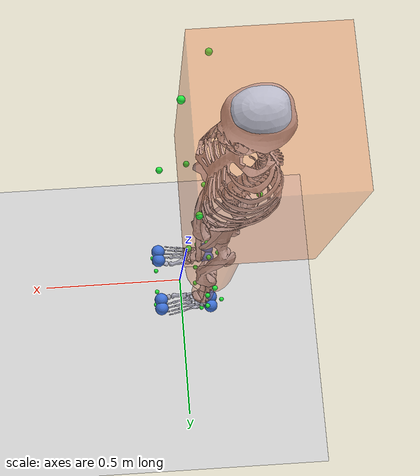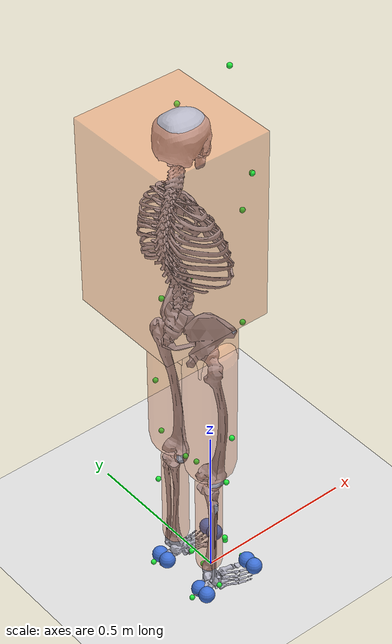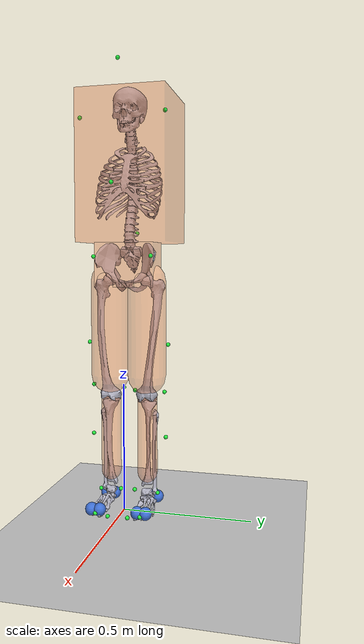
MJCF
<mujoco model="S001_base">
  <compiler angle="radian" autolimits="true" />
  <option gravity="0 0 -9.80665" timestep="0.001" />
  <default>
    <default class="visual">
      <geom contype="0" conaffinity="0" group="2" rgba="0.72 0.72 0.78 1" />
    </default>
    <default class="collision">
      <geom friction="0.8 0.005 0.0001" solref="-100000 -1000" rgba="0.25 0.45 0.85 1" />
    </default>
    <default class="self_collision">
      <geom friction="0.8 0.005 0.0001" solref="-25000 -250" rgba="0.95 0.45 0.18 0.35" />
    </default>
  </default>
  <asset>
    <mesh name="visual_00_pelvis_sacrum_ec82986d" file="Geometry/visual_00_pelvis_sacrum_ec82986d.obj" />
    <mesh name="visual_01_pelvis_pelvis_302c8103" file="Geometry/visual_01_pelvis_pelvis_302c8103.obj" />
    <mesh name="visual_02_pelvis_l_pelvis_221ff377" file="Geometry/visual_02_pelvis_l_pelvis_221ff377.obj" />
    <mesh name="visual_03_femur_right_femur_r_2bf9d3ed" file="Geometry/visual_03_femur_right_femur_r_2bf9d3ed.obj" />
    <mesh name="visual_04_tibia_right_r_tibia_2958b9c9" file="Geometry/visual_04_tibia_right_r_tibia_2958b9c9.obj" />
    <mesh name="visual_05_tibia_right_fibula_640f87b7" file="Geometry/visual_05_tibia_right_fibula_640f87b7.obj" />
    <mesh name="visual_06_foot_right_talus_9a24dff8" file="Geometry/visual_06_foot_right_talus_9a24dff8.obj" />
    <mesh name="visual_07_foot_right_foot_7a876838" file="Geometry/visual_07_foot_right_foot_7a876838.obj" />
    <mesh name="visual_08_foot_right_bofoot_9f7184c1" file="Geometry/visual_08_foot_right_bofoot_9f7184c1.obj" />
    <mesh name="visual_09_femur_left_l_femur_3a5df196" file="Geometry/visual_09_femur_left_l_femur_3a5df196.obj" />
    <mesh name="visual_10_tibia_left_l_tibia_5528711a" file="Geometry/visual_10_tibia_left_l_tibia_5528711a.obj" />
    <mesh name="visual_11_tibia_left_l_fibula_21cdc2c3" file="Geometry/visual_11_tibia_left_l_fibula_21cdc2c3.obj" />
    <mesh name="visual_12_foot_left_l_talus_fd829c17" file="Geometry/visual_12_foot_left_l_talus_fd829c17.obj" />
    <mesh name="visual_13_foot_left_l_foot_3fe52ebe" file="Geometry/visual_13_foot_left_l_foot_3fe52ebe.obj" />
    <mesh name="visual_14_foot_left_l_bofoot_73bbc705" file="Geometry/visual_14_foot_left_l_bofoot_73bbc705.obj" />
    <mesh name="visual_15_torso_hat_spine_e5497b48" file="Geometry/visual_15_torso_hat_spine_e5497b48.obj" />
    <mesh name="visual_16_torso_hat_jaw_ccce7bf1" file="Geometry/visual_16_torso_hat_jaw_ccce7bf1.obj" />
    <mesh name="visual_17_torso_hat_skull_4c29f62d" file="Geometry/visual_17_torso_hat_skull_4c29f62d.obj" />
    <mesh name="visual_18_torso_hat_ribs_c455e842" file="Geometry/visual_18_torso_hat_ribs_c455e842.obj" />
  </asset>
  <worldbody>
    <geom class="collision" name="ground" type="plane" size="5 5 0.1" rgba="0.85 0.85 0.85 1" />
    <geom class="visual" name="visual_ground" type="plane" size="5 5 0.1" pos="0 0 -0.002" rgba="0.78 0.78 0.78 1" />
    <body name="pelvis" pos="0 0 1.07187232">
      <freejoint name="pelvis_free" />
      <inertial mass="12.8372117" pos="-0.0644611068 0 -0.103561227" fullinertia="0.0931505463 0.0524652246 0.0789242944 0 0 0" />
      <geom class="self_collision" name="collision_pelvis" type="box" pos="-0.0644611068 0 -0.103561227" quat="0.5 0.5 0.5 0.5" size="0.118220646 0.0882765688 0.0668441471" />
      <body name="torso" pos="0 0 0.380048818">
        <inertial mass="37.3187129" pos="-0.120477047 0 -0.103561227" fullinertia="1.46719052 1.4243053 0.751756748 0 0 0" />
        <geom class="self_collision" name="collision_torso" type="box" pos="-0.120477047 0 -0.103561227" quat="0.707106781 0 -0.707106781 0" size="0.293266672 0.178717899 0.168797523" />
        <site name="marker_Sternum" type="sphere" size="0.008" pos="0.104122256 -0.0113355961 -0.179658265" rgba="0.15 0.95 0.25 1" />
        <site name="marker_R.Acromium" type="sphere" size="0.008" pos="-0.00655765042 -0.177059566 0.086305076" rgba="0.15 0.95 0.25 1" />
        <site name="marker_L.Acromium" type="sphere" size="0.008" pos="0.0403541796 0.178177321 0.0858673348" rgba="0.15 0.95 0.25 1" />
        <site name="marker_Top.Head" type="sphere" size="0.008" pos="0.0739996403 0.00640027578 0.277865668" rgba="0.15 0.95 0.25 1" />
        <geom class="visual" name="visual_15_torso_hat_spine_e5497b48" type="mesh" mesh="visual_15_torso_hat_spine_e5497b48" pos="0 0 0" />
        <geom class="visual" name="visual_16_torso_hat_jaw_ccce7bf1" type="mesh" mesh="visual_16_torso_hat_jaw_ccce7bf1" pos="0 0 0" />
        <geom class="visual" name="visual_17_torso_hat_skull_4c29f62d" type="mesh" mesh="visual_17_torso_hat_skull_4c29f62d" pos="0 0 0" />
        <geom class="visual" name="visual_18_torso_hat_ribs_c455e842" type="mesh" mesh="visual_18_torso_hat_ribs_c455e842" pos="0 0 0" />
      </body>
      <body name="femur_left" pos="0 0.0761315878 -0.285224705">
        <inertial mass="10.1387485" pos="-0.0644611068 0 -0.071786879" fullinertia="0.188477255 0.198752538 0.049406616 0 0 0" />
        <joint name="hip_flexion_left" type="hinge" pos="-0.0644611068 0 0.121396487" axis="0 -1 0" limited="true" range="-0.523598776 2.0943951" damping="0.5" armature="0.01" />
        <joint name="hip_adduction_left" type="hinge" pos="-0.0644611068 0 0.121396487" axis="1 0 0" limited="true" range="-0.436332313 0.785398163" damping="0.5" armature="0.01" />
        <joint name="hip_rotation_left" type="hinge" pos="-0.0644611068 0 0.121396487" axis="0 0 -1" limited="true" range="-0.785398163 0.785398163" damping="0.3" armature="0.01" />
        <geom class="self_collision" name="collision_femur_left" type="capsule" size="0.0760879314" fromto="-0.0644611068 0 -0.260348976 -0.0644611068 0 0.116775219" />
        <body name="tibia_left" pos="0 0 -0.426647118">
          <inertial mass="4.04126368" pos="-0.0695746152 0 -0.0768972372" fullinertia="0.048345482 0.0490168595 0.00489210211 0 0 0" />
          <joint name="knee_left" type="hinge" pos="-0.0695746152 0 0.0982441635" axis="0 1 0" limited="true" range="0 2.61799388" damping="0.3" armature="0.01" />
          <geom class="self_collision" name="collision_tibia_left" type="capsule" size="0.0395804332" fromto="-0.0695746152 0 -0.227159953 -0.0695746152 0 0.0733654789" />
          <body name="foot_left" pos="0.1 0 -0.241689404">
            <inertial mass="1.70763146" pos="-0.123135252 0.00587096121 -0.0837407485" fullinertia="0.00264064573 0.00716329796 0.00681252163 0.000249589237 0.000555215648 -5.06296655e-05" />
            <joint name="ankle_left" type="hinge" pos="-0.169574615 0 -0.0634452405" axis="0 -1 0" limited="true" range="-0.872664626 0.523598776" damping="0.2" armature="0.005" />
            <geom class="collision" name="contact_left_0" type="sphere" size="0.0245631567" pos="-0.205060106 -0.00106145517 -0.0937443246" />
            <geom class="visual" name="visual_foot_left_0" type="sphere" size="0.0245631567" pos="-0.205060106 -0.00106145517 -0.0937443246" rgba="0.18 0.32 0.58 0.35" />
            <geom class="collision" name="contact_left_1" type="sphere" size="0.0245631567" pos="-0.205060106 0.031707925 -0.0937443246" />
            <geom class="visual" name="visual_foot_left_1" type="sphere" size="0.0245631567" pos="-0.205060106 0.031707925 -0.0937443246" rgba="0.18 0.32 0.58 0.35" />
            <geom class="collision" name="contact_left_2" type="sphere" size="0.0245631567" pos="-0.024113655 -0.00106145517 -0.0937443246" />
            <geom class="visual" name="visual_foot_left_2" type="sphere" size="0.0245631567" pos="-0.024113655 -0.00106145517 -0.0937443246" rgba="0.18 0.32 0.58 0.35" />
            <geom class="collision" name="contact_left_3" type="sphere" size="0.0245631567" pos="-0.024113655 0.031707925 -0.0937443246" />
            <geom class="visual" name="visual_foot_left_3" type="sphere" size="0.0245631567" pos="-0.024113655 0.031707925 -0.0937443246" rgba="0.18 0.32 0.58 0.35" />
            <site name="marker_L.Heel" type="sphere" size="0.008" pos="-0.245883922 0.0123494469 -0.085261459" rgba="0.15 0.95 0.25 1" />
            <site name="marker_L.Toe.Lat" type="sphere" size="0.008" pos="-0.0418285086 0.0755387555 -0.132864009" rgba="0.15 0.95 0.25 1" />
            <site name="marker_L.Toe.Med" type="sphere" size="0.008" pos="-0.0107400735 -0.0352105177 -0.110560125" rgba="0.15 0.95 0.25 1" />
            <site name="marker_L.Toe.Tip" type="sphere" size="0.008" pos="-0.00410729865 0.0156085813 -0.100088138" rgba="0.15 0.95 0.25 1" />
            <geom class="visual" name="visual_12_foot_left_l_talus_fd829c17" type="mesh" mesh="visual_12_foot_left_l_talus_fd829c17" pos="0 0 0" />
            <geom class="visual" name="visual_13_foot_left_l_foot_3fe52ebe" type="mesh" mesh="visual_13_foot_left_l_foot_3fe52ebe" pos="0 0 0" />
            <geom class="visual" name="visual_14_foot_left_l_bofoot_73bbc705" type="mesh" mesh="visual_14_foot_left_l_bofoot_73bbc705" pos="0 0 0" />
          </body>
          <site name="marker_L.Shank.Centroid" type="sphere" size="0.008" pos="-0.0717205121 0.07530788923 -0.07943658743" rgba="0.15 0.95 0.25 1" />
          <site name="marker_L.Ankle.Lat" type="sphere" size="0.008" pos="-0.0685067835 0.041953596 -0.307456639" rgba="0.15 0.95 0.25 1" />
          <site name="marker_L.Ankle.Med" type="sphere" size="0.008" pos="-0.0510852117 -0.0486733562 -0.295064097" rgba="0.15 0.95 0.25 1" />
          <geom class="visual" name="visual_10_tibia_left_l_tibia_5528711a" type="mesh" mesh="visual_10_tibia_left_l_tibia_5528711a" pos="0 0 -0.015" />
          <geom class="visual" name="visual_11_tibia_left_l_fibula_21cdc2c3" type="mesh" mesh="visual_11_tibia_left_l_fibula_21cdc2c3" pos="0 0 -0.015" />
        </body>
        <site name="marker_L.Thigh.Centroid" type="sphere" size="0.008" pos="-0.0648966321 0.0862752783 -0.1338137911" rgba="0.15 0.95 0.25 1" />
        <site name="marker_L.Knee.Lat" type="sphere" size="0.008" pos="-0.0581684968 0.0732696782 -0.321113539" rgba="0.15 0.95 0.25 1" />
        <site name="marker_L.Knee.Med" type="sphere" size="0.008" pos="-0.0712966662 -0.0522536246 -0.322948004" rgba="0.15 0.95 0.25 1" />
        <geom class="visual" name="visual_09_femur_left_l_femur_3a5df196" type="mesh" mesh="visual_09_femur_left_l_femur_3a5df196" pos="0 0 0" />
      </body>
      <body name="femur_right" pos="0 -0.0761315878 -0.285224705">
        <inertial mass="10.1387485" pos="-0.0644611068 0 -0.071786879" fullinertia="0.188477255 0.198752538 0.049406616 0 0 0" />
        <joint name="hip_flexion_right" type="hinge" pos="-0.0644611068 0 0.121396487" axis="0 -1 0" limited="true" range="-0.523598776 2.0943951" damping="0.5" armature="0.01" />
        <joint name="hip_adduction_right" type="hinge" pos="-0.0644611068 0 0.121396487" axis="-1 0 0" limited="true" range="-0.436332313 0.785398163" damping="0.5" armature="0.01" />
        <joint name="hip_rotation_right" type="hinge" pos="-0.0644611068 0 0.121396487" axis="0 0 1" limited="true" range="-0.785398163 0.785398163" damping="0.3" armature="0.01" />
        <geom class="self_collision" name="collision_femur_right" type="capsule" size="0.0760879314" fromto="-0.0644611068 0 -0.260348976 -0.0644611068 0 0.116775219" />
        <body name="tibia_right" pos="0 0 -0.426647118">
          <inertial mass="4.04126368" pos="-0.0695746152 0 -0.0768972372" fullinertia="0.048345482 0.0490168595 0.00489210211 0 0 0" />
          <joint name="knee_right" type="hinge" pos="-0.0695746152 0 0.0982441635" axis="0 1 0" limited="true" range="0 2.61799388" damping="0.3" armature="0.01" />
          <geom class="self_collision" name="collision_tibia_right" type="capsule" size="0.0395804332" fromto="-0.0695746152 0 -0.227159953 -0.0695746152 0 0.0733654789" />
          <body name="foot_right" pos="0.1 0 -0.241689404">
            <inertial mass="1.70763146" pos="-0.123134923 -0.0058612445 -0.0837431202" fullinertia="0.00264075108 0.00716320678 0.00681251045 -0.000250342946 0.000555281756 5.07815352e-05" />
            <joint name="ankle_right" type="hinge" pos="-0.169574615 0 -0.0634452405" axis="0 -1 0" limited="true" range="-0.872664626 0.523598776" damping="0.2" armature="0.005" />
            <geom class="collision" name="contact_right_0" type="sphere" size="0.0245631567" pos="-0.205060739 -0.0316831843 -0.0937479388" />
            <geom class="visual" name="visual_foot_right_0" type="sphere" size="0.0245631567" pos="-0.205060739 -0.0316831843 -0.0937479388" rgba="0.18 0.32 0.58 0.35" />
            <geom class="collision" name="contact_right_1" type="sphere" size="0.0245631567" pos="-0.205060739 0.00106769127 -0.0937479388" />
            <geom class="visual" name="visual_foot_right_1" type="sphere" size="0.0245631567" pos="-0.205060739 0.00106769127 -0.0937479388" rgba="0.18 0.32 0.58 0.35" />
            <geom class="collision" name="contact_right_2" type="sphere" size="0.0245631567" pos="-0.0241155922 -0.0316831843 -0.0937479388" />
            <geom class="visual" name="visual_foot_right_2" type="sphere" size="0.0245631567" pos="-0.0241155922 -0.0316831843 -0.0937479388" rgba="0.18 0.32 0.58 0.35" />
            <geom class="collision" name="contact_right_3" type="sphere" size="0.0245631567" pos="-0.0241155922 0.00106769127 -0.0937479388" />
            <geom class="visual" name="visual_foot_right_3" type="sphere" size="0.0245631567" pos="-0.0241155922 0.00106769127 -0.0937479388" rgba="0.18 0.32 0.58 0.35" />
            <site name="marker_R.Heel" type="sphere" size="0.008" pos="-0.245826481 -0.0142874825 -0.0918807738" rgba="0.15 0.95 0.25 1" />
            <site name="marker_R.Toe.Lat" type="sphere" size="0.008" pos="-0.0412791947 -0.074399724 -0.138112263" rgba="0.15 0.95 0.25 1" />
            <site name="marker_R.Toe.Med" type="sphere" size="0.008" pos="-0.0125997536 0.0373876086 -0.112359191" rgba="0.15 0.95 0.25 1" />
            <site name="marker_R.Toe.Tip" type="sphere" size="0.008" pos="-0.00242070575 -0.00870434309 -0.100662762" rgba="0.15 0.95 0.25 1" />
            <geom class="visual" name="visual_06_foot_right_talus_9a24dff8" type="mesh" mesh="visual_06_foot_right_talus_9a24dff8" pos="0 0 0" />
            <geom class="visual" name="visual_07_foot_right_foot_7a876838" type="mesh" mesh="visual_07_foot_right_foot_7a876838" pos="0 0 0" />
            <geom class="visual" name="visual_08_foot_right_bofoot_9f7184c1" type="mesh" mesh="visual_08_foot_right_bofoot_9f7184c1" pos="0 0 0" />
          </body>
          <site name="marker_R.Shank.Centroid" type="sphere" size="0.008" pos="-0.0754311931 -0.0774699464 -0.08283807567" rgba="0.15 0.95 0.25 1" />
          <site name="marker_R.Ankle.Lat" type="sphere" size="0.008" pos="-0.0683227953 -0.0445541988 -0.308416155" rgba="0.15 0.95 0.25 1" />
          <site name="marker_R.Ankle.Med" type="sphere" size="0.008" pos="-0.056089944 0.0442812974 -0.298207883" rgba="0.15 0.95 0.25 1" />
          <geom class="visual" name="visual_04_tibia_right_r_tibia_2958b9c9" type="mesh" mesh="visual_04_tibia_right_r_tibia_2958b9c9" pos="0 0 -0.015" />
          <geom class="visual" name="visual_05_tibia_right_fibula_640f87b7" type="mesh" mesh="visual_05_tibia_right_fibula_640f87b7" pos="0 0 -0.015" />
        </body>
        <site name="marker_R.Thigh.Centroid" type="sphere" size="0.008" pos="-0.05632569683 -0.08514625737 -0.1305325118" rgba="0.15 0.95 0.25 1" />
        <site name="marker_R.Knee.Lat" type="sphere" size="0.008" pos="-0.0638920165 -0.0706095176 -0.304460087" rgba="0.15 0.95 0.25 1" />
        <site name="marker_R.Knee.Med" type="sphere" size="0.008" pos="-0.0683124305 0.0548999531 -0.313602292" rgba="0.15 0.95 0.25 1" />
        <geom class="visual" name="visual_03_femur_right_femur_r_2bf9d3ed" type="mesh" mesh="visual_03_femur_right_femur_r_2bf9d3ed" pos="0 0 0" />
      </body>
      <site name="marker_R.ASIS" type="sphere" size="0.008" pos="0.018852811 -0.114790955 -0.0724460888" rgba="0.15 0.95 0.25 1" />
      <site name="marker_L.ASIS" type="sphere" size="0.008" pos="0.0297126397 0.11835526 -0.0702825275" rgba="0.15 0.95 0.25 1" />
      <site name="marker_V.Sacral" type="sphere" size="0.008" pos="-0.155979604 0.0100664123 0.0228048099" rgba="0.15 0.95 0.25 1" />
      <geom class="visual" name="visual_00_pelvis_sacrum_ec82986d" type="mesh" mesh="visual_00_pelvis_sacrum_ec82986d" pos="0 0 0" />
      <geom class="visual" name="visual_01_pelvis_pelvis_302c8103" type="mesh" mesh="visual_01_pelvis_pelvis_302c8103" pos="0 0 0" />
      <geom class="visual" name="visual_02_pelvis_l_pelvis_221ff377" type="mesh" mesh="visual_02_pelvis_l_pelvis_221ff377" pos="0 0 0" />
    </body>
  </worldbody>
  <actuator>
    <position name="hip_flexion_left_position" joint="hip_flexion_left" kp="100" ctrllimited="true" ctrlrange="-0.523598776 2.0943951" />
    <velocity name="hip_flexion_left_velocity" joint="hip_flexion_left" kv="20" ctrllimited="true" ctrlrange="-20 20" />
    <position name="hip_adduction_left_position" joint="hip_adduction_left" kp="100" ctrllimited="true" ctrlrange="-0.436332313 0.785398163" />
    <velocity name="hip_adduction_left_velocity" joint="hip_adduction_left" kv="20" ctrllimited="true" ctrlrange="-20 20" />
    <position name="hip_rotation_left_position" joint="hip_rotation_left" kp="100" ctrllimited="true" ctrlrange="-0.785398163 0.785398163" />
    <velocity name="hip_rotation_left_velocity" joint="hip_rotation_left" kv="20" ctrllimited="true" ctrlrange="-20 20" />
    <position name="knee_left_position" joint="knee_left" kp="100" ctrllimited="true" ctrlrange="0 2.61799388" />
    <velocity name="knee_left_velocity" joint="knee_left" kv="20" ctrllimited="true" ctrlrange="-20 20" />
    <position name="ankle_left_position" joint="ankle_left" kp="100" ctrllimited="true" ctrlrange="-0.872664626 0.523598776" />
    <velocity name="ankle_left_velocity" joint="ankle_left" kv="20" ctrllimited="true" ctrlrange="-20 20" />
    <position name="hip_flexion_right_position" joint="hip_flexion_right" kp="100" ctrllimited="true" ctrlrange="-0.523598776 2.0943951" />
    <velocity name="hip_flexion_right_velocity" joint="hip_flexion_right" kv="20" ctrllimited="true" ctrlrange="-20 20" />
    <position name="hip_adduction_right_position" joint="hip_adduction_right" kp="100" ctrllimited="true" ctrlrange="-0.436332313 0.785398163" />
    <velocity name="hip_adduction_right_velocity" joint="hip_adduction_right" kv="20" ctrllimited="true" ctrlrange="-20 20" />
    <position name="hip_rotation_right_position" joint="hip_rotation_right" kp="100" ctrllimited="true" ctrlrange="-0.785398163 0.785398163" />
    <velocity name="hip_rotation_right_velocity" joint="hip_rotation_right" kv="20" ctrllimited="true" ctrlrange="-20 20" />
    <position name="knee_right_position" joint="knee_right" kp="100" ctrllimited="true" ctrlrange="0 2.61799388" />
    <velocity name="knee_right_velocity" joint="knee_right" kv="20" ctrllimited="true" ctrlrange="-20 20" />
    <position name="ankle_right_position" joint="ankle_right" kp="100" ctrllimited="true" ctrlrange="-0.872664626 0.523598776" />
    <velocity name="ankle_right_velocity" joint="ankle_right" kv="20" ctrllimited="true" ctrlrange="-20 20" />
  </actuator>
  <contact>
    <exclude body1="pelvis" body2="torso" />
    <exclude body1="pelvis" body2="femur_left" />
    <exclude body1="femur_left" body2="tibia_left" />
    <exclude body1="tibia_left" body2="foot_left" />
    <exclude body1="pelvis" body2="femur_right" />
    <exclude body1="femur_right" body2="tibia_right" />
    <exclude body1="tibia_right" body2="foot_right" />
  </contact>
  <keyframe>
    <key name="neutral" qpos="0 0 1.07187232 1 0 0 0 0 0 0 0 0 0 0 0 0 0" />
  </keyframe>
</mujoco>
